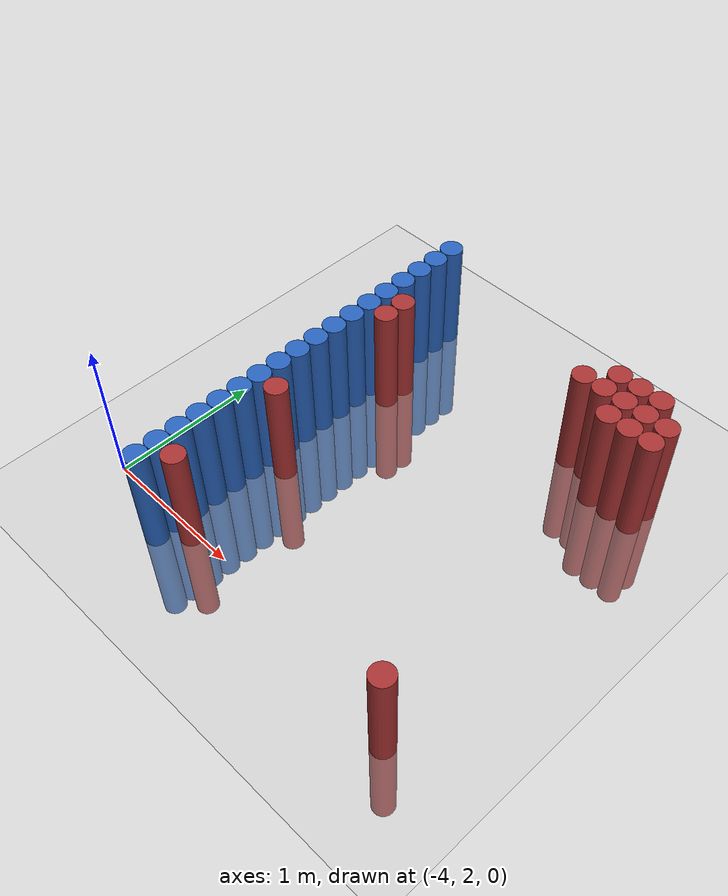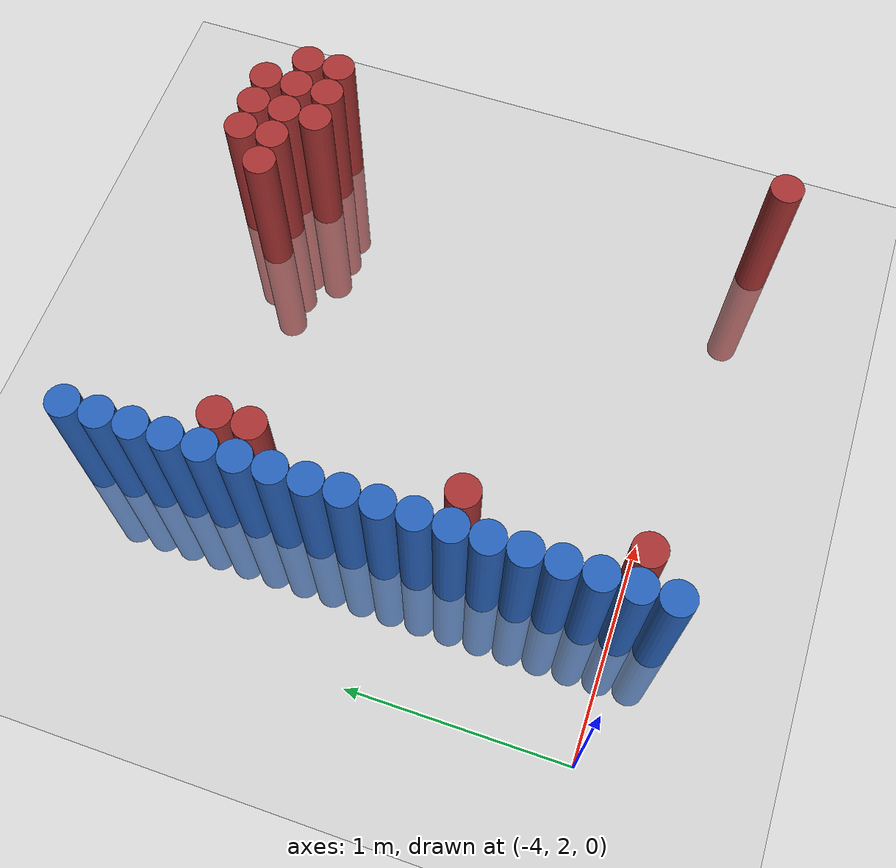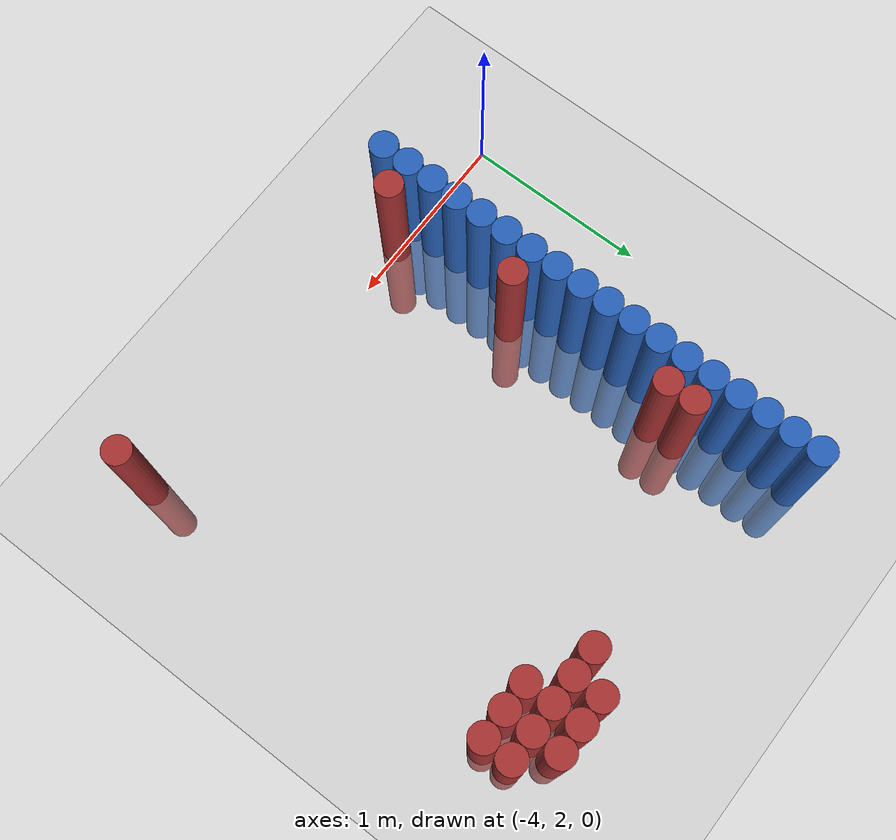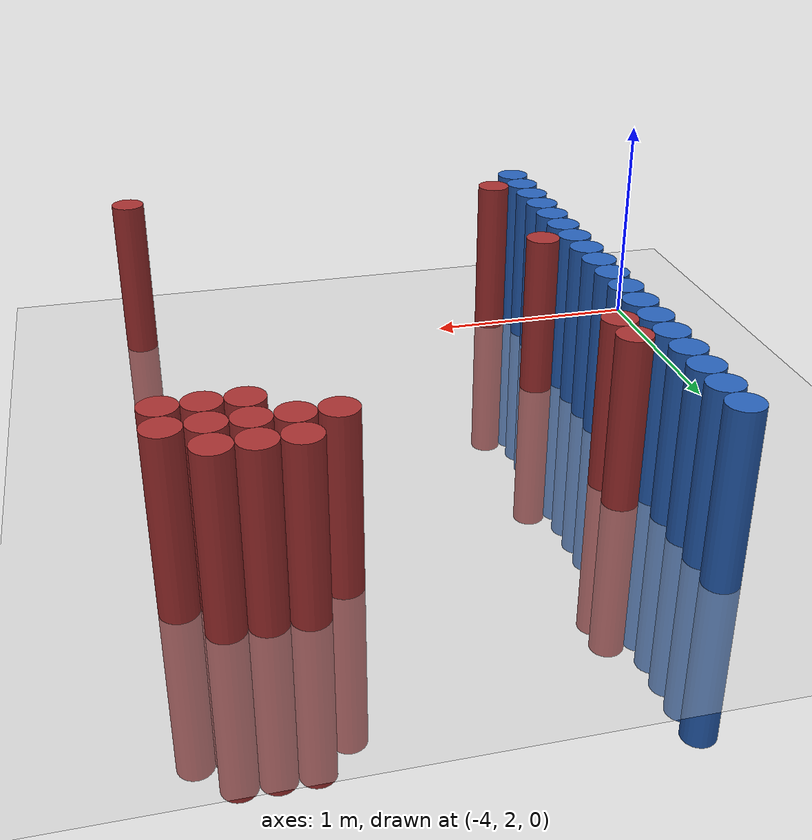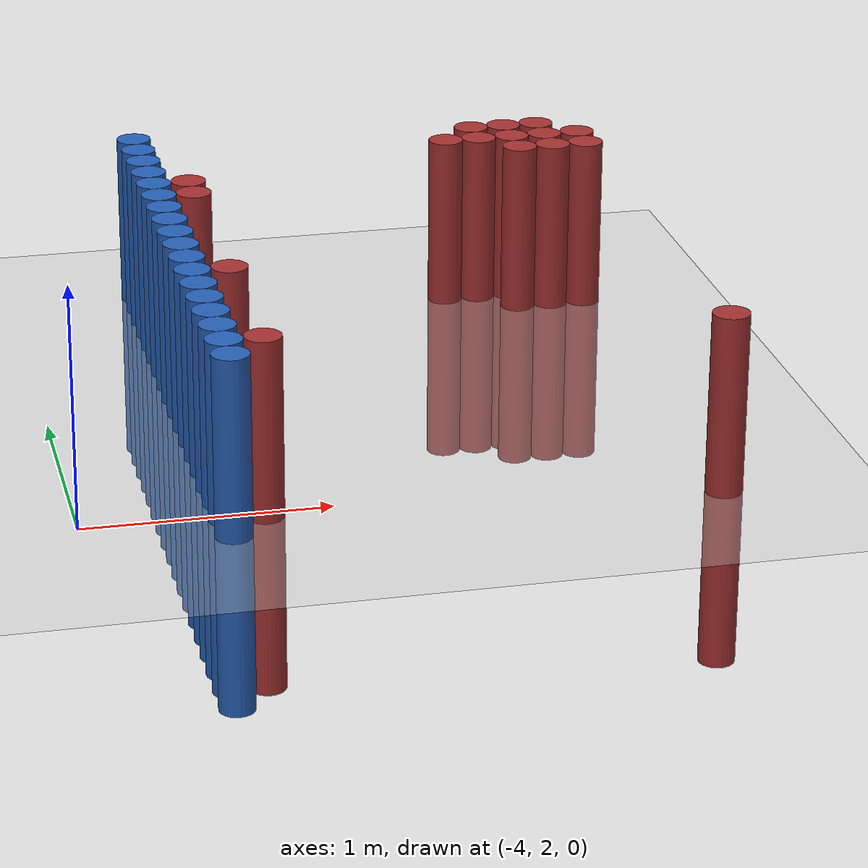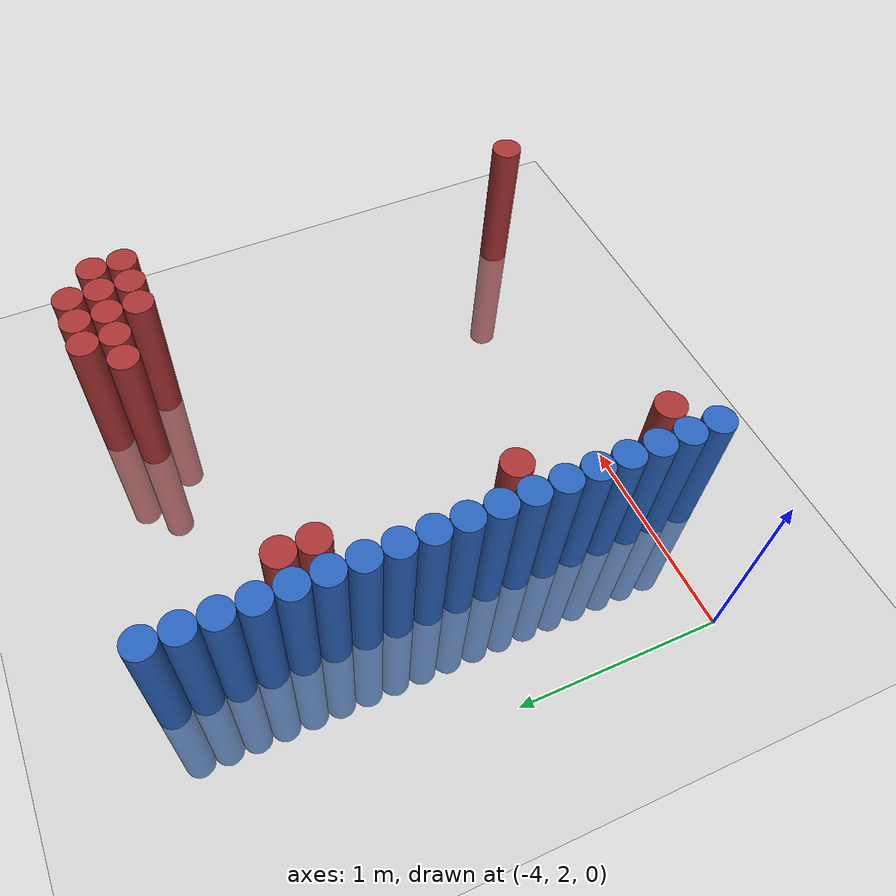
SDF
<sdf version="1.6">
 <world name="default">
  <model name="ground_plane">
   <static>1</static>
   <link name="link">
    <collision name="collision">
     <geometry><plane><normal>0 0 1</normal><size>100 100</size></plane></geometry>
     <surface><friction><ode><mu>100</mu><mu2>50</mu2></ode></friction></surface>
    </collision>
    <visual name="visual">
     <cast_shadows>0</cast_shadows>
     <geometry><plane><normal>0 0 1</normal><size>100 100</size></plane></geometry>
     <material>
      <script><uri>file://media/materials/scripts/gazebo.material</uri><name>Gazebo/Grey</name></script>
     </material>
    </visual>
   </link>
  </model>
  <model name="unit_cylinder_139">
   <static>1</static>
   <pose>-3.425000 1.825000 0.000000 0.000000 0.000000 0.000000</pose>
   <link name="link">
    <inertial>
     <mass>1</mass>
     <inertia><ixx>0.145833</ixx><ixy>0</ixy><ixz>0</ixz><iyy>0.145833</iyy><iyz>0</iyz><izz>0.125</izz></inertia>
    </inertial>
    <collision name="collision">
     <geometry><cylinder><radius>0.075000</radius><length>1.5</length></cylinder></geometry>
    </collision>
    <visual name="visual">
     <geometry><cylinder><radius>0.075000</radius><length>1.5</length></cylinder></geometry>
     <material>
      <ambient>0.152000 0.379000 0.720000 1</ambient>
      <diffuse>0.152000 0.379000 0.720000 1</diffuse>
     </material>
     <material>
      <script><name>Gazebo/Grey</name><uri>file://media/materials/scripts/gazebo.material</uri></script>
     </material>
    </visual>
   </link>
  </model>
  <model name="unit_cylinder_141">
   <static>1</static>
   <pose>-3.425000 1.975000 0.000000 0.000000 0.000000 0.000000</pose>
   <link name="link">
    <inertial>
     <mass>1</mass>
     <inertia><ixx>0.145833</ixx><ixy>0</ixy><ixz>0</ixz><iyy>0.145833</iyy><iyz>0</iyz><izz>0.125</izz></inertia>
    </inertial>
    <collision name="collision">
     <geometry><cylinder><radius>0.075000</radius><length>1.5</length></cylinder></geometry>
    </collision>
    <visual name="visual">
     <geometry><cylinder><radius>0.075000</radius><length>1.5</length></cylinder></geometry>
     <material>
      <ambient>0.152000 0.379000 0.720000 1</ambient>
      <diffuse>0.152000 0.379000 0.720000 1</diffuse>
     </material>
     <material>
      <script><name>Gazebo/Grey</name><uri>file://media/materials/scripts/gazebo.material</uri></script>
     </material>
    </visual>
   </link>
  </model>
  <model name="unit_cylinder_143">
   <static>1</static>
   <pose>-3.425000 2.125000 0.000000 0.000000 0.000000 0.000000</pose>
   <link name="link">
    <inertial>
     <mass>1</mass>
     <inertia><ixx>0.145833</ixx><ixy>0</ixy><ixz>0</ixz><iyy>0.145833</iyy><iyz>0</iyz><izz>0.125</izz></inertia>
    </inertial>
    <collision name="collision">
     <geometry><cylinder><radius>0.075000</radius><length>1.5</length></cylinder></geometry>
    </collision>
    <visual name="visual">
     <geometry><cylinder><radius>0.075000</radius><length>1.5</length></cylinder></geometry>
     <material>
      <ambient>0.152000 0.379000 0.720000 1</ambient>
      <diffuse>0.152000 0.379000 0.720000 1</diffuse>
     </material>
     <material>
      <script><name>Gazebo/Grey</name><uri>file://media/materials/scripts/gazebo.material</uri></script>
     </material>
    </visual>
   </link>
  </model>
  <model name="unit_cylinder_145">
   <static>1</static>
   <pose>-3.425000 2.275000 0.000000 0.000000 0.000000 0.000000</pose>
   <link name="link">
    <inertial>
     <mass>1</mass>
     <inertia><ixx>0.145833</ixx><ixy>0</ixy><ixz>0</ixz><iyy>0.145833</iyy><iyz>0</iyz><izz>0.125</izz></inertia>
    </inertial>
    <collision name="collision">
     <geometry><cylinder><radius>0.075000</radius><length>1.5</length></cylinder></geometry>
    </collision>
    <visual name="visual">
     <geometry><cylinder><radius>0.075000</radius><length>1.5</length></cylinder></geometry>
     <material>
      <ambient>0.152000 0.379000 0.720000 1</ambient>
      <diffuse>0.152000 0.379000 0.720000 1</diffuse>
     </material>
     <material>
      <script><name>Gazebo/Grey</name><uri>file://media/materials/scripts/gazebo.material</uri></script>
     </material>
    </visual>
   </link>
  </model>
  <model name="unit_cylinder_147">
   <static>1</static>
   <pose>-3.425000 2.425000 0.000000 0.000000 0.000000 0.000000</pose>
   <link name="link">
    <inertial>
     <mass>1</mass>
     <inertia><ixx>0.145833</ixx><ixy>0</ixy><ixz>0</ixz><iyy>0.145833</iyy><iyz>0</iyz><izz>0.125</izz></inertia>
    </inertial>
    <collision name="collision">
     <geometry><cylinder><radius>0.075000</radius><length>1.5</length></cylinder></geometry>
    </collision>
    <visual name="visual">
     <geometry><cylinder><radius>0.075000</radius><length>1.5</length></cylinder></geometry>
     <material>
      <ambient>0.152000 0.379000 0.720000 1</ambient>
      <diffuse>0.152000 0.379000 0.720000 1</diffuse>
     </material>
     <material>
      <script><name>Gazebo/Grey</name><uri>file://media/materials/scripts/gazebo.material</uri></script>
     </material>
    </visual>
   </link>
  </model>
  <model name="unit_cylinder_149">
   <static>1</static>
   <pose>-3.425000 2.575000 0.000000 0.000000 0.000000 0.000000</pose>
   <link name="link">
    <inertial>
     <mass>1</mass>
     <inertia><ixx>0.145833</ixx><ixy>0</ixy><ixz>0</ixz><iyy>0.145833</iyy><iyz>0</iyz><izz>0.125</izz></inertia>
    </inertial>
    <collision name="collision">
     <geometry><cylinder><radius>0.075000</radius><length>1.5</length></cylinder></geometry>
    </collision>
    <visual name="visual">
     <geometry><cylinder><radius>0.075000</radius><length>1.5</length></cylinder></geometry>
     <material>
      <ambient>0.152000 0.379000 0.720000 1</ambient>
      <diffuse>0.152000 0.379000 0.720000 1</diffuse>
     </material>
     <material>
      <script><name>Gazebo/Grey</name><uri>file://media/materials/scripts/gazebo.material</uri></script>
     </material>
    </visual>
   </link>
  </model>
  <model name="unit_cylinder_151">
   <static>1</static>
   <pose>-3.425000 2.725000 0.000000 0.000000 0.000000 0.000000</pose>
   <link name="link">
    <inertial>
     <mass>1</mass>
     <inertia><ixx>0.145833</ixx><ixy>0</ixy><ixz>0</ixz><iyy>0.145833</iyy><iyz>0</iyz><izz>0.125</izz></inertia>
    </inertial>
    <collision name="collision">
     <geometry><cylinder><radius>0.075000</radius><length>1.5</length></cylinder></geometry>
    </collision>
    <visual name="visual">
     <geometry><cylinder><radius>0.075000</radius><length>1.5</length></cylinder></geometry>
     <material>
      <ambient>0.152000 0.379000 0.720000 1</ambient>
      <diffuse>0.152000 0.379000 0.720000 1</diffuse>
     </material>
     <material>
      <script><name>Gazebo/Grey</name><uri>file://media/materials/scripts/gazebo.material</uri></script>
     </material>
    </visual>
   </link>
  </model>
  <model name="unit_cylinder_153">
   <static>1</static>
   <pose>-3.425000 2.875000 0.000000 0.000000 0.000000 0.000000</pose>
   <link name="link">
    <inertial>
     <mass>1</mass>
     <inertia><ixx>0.145833</ixx><ixy>0</ixy><ixz>0</ixz><iyy>0.145833</iyy><iyz>0</iyz><izz>0.125</izz></inertia>
    </inertial>
    <collision name="collision">
     <geometry><cylinder><radius>0.075000</radius><length>1.5</length></cylinder></geometry>
    </collision>
    <visual name="visual">
     <geometry><cylinder><radius>0.075000</radius><length>1.5</length></cylinder></geometry>
     <material>
      <ambient>0.152000 0.379000 0.720000 1</ambient>
      <diffuse>0.152000 0.379000 0.720000 1</diffuse>
     </material>
     <material>
      <script><name>Gazebo/Grey</name><uri>file://media/materials/scripts/gazebo.material</uri></script>
     </material>
    </visual>
   </link>
  </model>
  <model name="unit_cylinder_155">
   <static>1</static>
   <pose>-3.425000 3.025000 0.000000 0.000000 0.000000 0.000000</pose>
   <link name="link">
    <inertial>
     <mass>1</mass>
     <inertia><ixx>0.145833</ixx><ixy>0</ixy><ixz>0</ixz><iyy>0.145833</iyy><iyz>0</iyz><izz>0.125</izz></inertia>
    </inertial>
    <collision name="collision">
     <geometry><cylinder><radius>0.075000</radius><length>1.5</length></cylinder></geometry>
    </collision>
    <visual name="visual">
     <geometry><cylinder><radius>0.075000</radius><length>1.5</length></cylinder></geometry>
     <material>
      <ambient>0.152000 0.379000 0.720000 1</ambient>
      <diffuse>0.152000 0.379000 0.720000 1</diffuse>
     </material>
     <material>
      <script><name>Gazebo/Grey</name><uri>file://media/materials/scripts/gazebo.material</uri></script>
     </material>
    </visual>
   </link>
  </model>
  <model name="unit_cylinder_157">
   <static>1</static>
   <pose>-3.425000 3.175000 0.000000 0.000000 0.000000 0.000000</pose>
   <link name="link">
    <inertial>
     <mass>1</mass>
     <inertia><ixx>0.145833</ixx><ixy>0</ixy><ixz>0</ixz><iyy>0.145833</iyy><iyz>0</iyz><izz>0.125</izz></inertia>
    </inertial>
    <collision name="collision">
     <geometry><cylinder><radius>0.075000</radius><length>1.5</length></cylinder></geometry>
    </collision>
    <visual name="visual">
     <geometry><cylinder><radius>0.075000</radius><length>1.5</length></cylinder></geometry>
     <material>
      <ambient>0.152000 0.379000 0.720000 1</ambient>
      <diffuse>0.152000 0.379000 0.720000 1</diffuse>
     </material>
     <material>
      <script><name>Gazebo/Grey</name><uri>file://media/materials/scripts/gazebo.material</uri></script>
     </material>
    </visual>
   </link>
  </model>
  <model name="unit_cylinder_159">
   <static>1</static>
   <pose>-3.425000 3.325000 0.000000 0.000000 0.000000 0.000000</pose>
   <link name="link">
    <inertial>
     <mass>1</mass>
     <inertia><ixx>0.145833</ixx><ixy>0</ixy><ixz>0</ixz><iyy>0.145833</iyy><iyz>0</iyz><izz>0.125</izz></inertia>
    </inertial>
    <collision name="collision">
     <geometry><cylinder><radius>0.075000</radius><length>1.5</length></cylinder></geometry>
    </collision>
    <visual name="visual">
     <geometry><cylinder><radius>0.075000</radius><length>1.5</length></cylinder></geometry>
     <material>
      <ambient>0.152000 0.379000 0.720000 1</ambient>
      <diffuse>0.152000 0.379000 0.720000 1</diffuse>
     </material>
     <material>
      <script><name>Gazebo/Grey</name><uri>file://media/materials/scripts/gazebo.material</uri></script>
     </material>
    </visual>
   </link>
  </model>
  <model name="unit_cylinder_161">
   <static>1</static>
   <pose>-3.425000 3.475000 0.000000 0.000000 0.000000 0.000000</pose>
   <link name="link">
    <inertial>
     <mass>1</mass>
     <inertia><ixx>0.145833</ixx><ixy>0</ixy><ixz>0</ixz><iyy>0.145833</iyy><iyz>0</iyz><izz>0.125</izz></inertia>
    </inertial>
    <collision name="collision">
     <geometry><cylinder><radius>0.075000</radius><length>1.5</length></cylinder></geometry>
    </collision>
    <visual name="visual">
     <geometry><cylinder><radius>0.075000</radius><length>1.5</length></cylinder></geometry>
     <material>
      <ambient>0.152000 0.379000 0.720000 1</ambient>
      <diffuse>0.152000 0.379000 0.720000 1</diffuse>
     </material>
     <material>
      <script><name>Gazebo/Grey</name><uri>file://media/materials/scripts/gazebo.material</uri></script>
     </material>
    </visual>
   </link>
  </model>
  <model name="unit_cylinder_163">
   <static>1</static>
   <pose>-3.425000 3.625000 0.000000 0.000000 0.000000 0.000000</pose>
   <link name="link">
    <inertial>
     <mass>1</mass>
     <inertia><ixx>0.145833</ixx><ixy>0</ixy><ixz>0</ixz><iyy>0.145833</iyy><iyz>0</iyz><izz>0.125</izz></inertia>
    </inertial>
    <collision name="collision">
     <geometry><cylinder><radius>0.075000</radius><length>1.5</length></cylinder></geometry>
    </collision>
    <visual name="visual">
     <geometry><cylinder><radius>0.075000</radius><length>1.5</length></cylinder></geometry>
     <material>
      <ambient>0.152000 0.379000 0.720000 1</ambient>
      <diffuse>0.152000 0.379000 0.720000 1</diffuse>
     </material>
     <material>
      <script><name>Gazebo/Grey</name><uri>file://media/materials/scripts/gazebo.material</uri></script>
     </material>
    </visual>
   </link>
  </model>
  <model name="unit_cylinder_165">
   <static>1</static>
   <pose>-3.425000 3.775000 0.000000 0.000000 0.000000 0.000000</pose>
   <link name="link">
    <inertial>
     <mass>1</mass>
     <inertia><ixx>0.145833</ixx><ixy>0</ixy><ixz>0</ixz><iyy>0.145833</iyy><iyz>0</iyz><izz>0.125</izz></inertia>
    </inertial>
    <collision name="collision">
     <geometry><cylinder><radius>0.075000</radius><length>1.5</length></cylinder></geometry>
    </collision>
    <visual name="visual">
     <geometry><cylinder><radius>0.075000</radius><length>1.5</length></cylinder></geometry>
     <material>
      <ambient>0.152000 0.379000 0.720000 1</ambient>
      <diffuse>0.152000 0.379000 0.720000 1</diffuse>
     </material>
     <material>
      <script><name>Gazebo/Grey</name><uri>file://media/materials/scripts/gazebo.material</uri></script>
     </material>
    </visual>
   </link>
  </model>
  <model name="unit_cylinder_167">
   <static>1</static>
   <pose>-3.425000 3.925000 0.000000 0.000000 0.000000 0.000000</pose>
   <link name="link">
    <inertial>
     <mass>1</mass>
     <inertia><ixx>0.145833</ixx><ixy>0</ixy><ixz>0</ixz><iyy>0.145833</iyy><iyz>0</iyz><izz>0.125</izz></inertia>
    </inertial>
    <collision name="collision">
     <geometry><cylinder><radius>0.075000</radius><length>1.5</length></cylinder></geometry>
    </collision>
    <visual name="visual">
     <geometry><cylinder><radius>0.075000</radius><length>1.5</length></cylinder></geometry>
     <material>
      <ambient>0.152000 0.379000 0.720000 1</ambient>
      <diffuse>0.152000 0.379000 0.720000 1</diffuse>
     </material>
     <material>
      <script><name>Gazebo/Grey</name><uri>file://media/materials/scripts/gazebo.material</uri></script>
     </material>
    </visual>
   </link>
  </model>
  <model name="unit_cylinder_169">
   <static>1</static>
   <pose>-3.425000 4.075000 0.000000 0.000000 0.000000 0.000000</pose>
   <link name="link">
    <inertial>
     <mass>1</mass>
     <inertia><ixx>0.145833</ixx><ixy>0</ixy><ixz>0</ixz><iyy>0.145833</iyy><iyz>0</iyz><izz>0.125</izz></inertia>
    </inertial>
    <collision name="collision">
     <geometry><cylinder><radius>0.075000</radius><length>1.5</length></cylinder></geometry>
    </collision>
    <visual name="visual">
     <geometry><cylinder><radius>0.075000</radius><length>1.5</length></cylinder></geometry>
     <material>
      <ambient>0.152000 0.379000 0.720000 1</ambient>
      <diffuse>0.152000 0.379000 0.720000 1</diffuse>
     </material>
     <material>
      <script><name>Gazebo/Grey</name><uri>file://media/materials/scripts/gazebo.material</uri></script>
     </material>
    </visual>
   </link>
  </model>
  <model name="unit_cylinder_171">
   <static>1</static>
   <pose>-3.425000 4.225000 0.000000 0.000000 0.000000 0.000000</pose>
   <link name="link">
    <inertial>
     <mass>1</mass>
     <inertia><ixx>0.145833</ixx><ixy>0</ixy><ixz>0</ixz><iyy>0.145833</iyy><iyz>0</iyz><izz>0.125</izz></inertia>
    </inertial>
    <collision name="collision">
     <geometry><cylinder><radius>0.075000</radius><length>1.5</length></cylinder></geometry>
    </collision>
    <visual name="visual">
     <geometry><cylinder><radius>0.075000</radius><length>1.5</length></cylinder></geometry>
     <material>
      <ambient>0.152000 0.379000 0.720000 1</ambient>
      <diffuse>0.152000 0.379000 0.720000 1</diffuse>
     </material>
     <material>
      <script><name>Gazebo/Grey</name><uri>file://media/materials/scripts/gazebo.material</uri></script>
     </material>
    </visual>
   </link>
  </model>
  <model name="unit_cylinder_173">
   <static>1</static>
   <pose>-3.425000 4.375000 0.000000 0.000000 0.000000 0.000000</pose>
   <link name="link">
    <inertial>
     <mass>1</mass>
     <inertia><ixx>0.145833</ixx><ixy>0</ixy><ixz>0</ixz><iyy>0.145833</iyy><iyz>0</iyz><izz>0.125</izz></inertia>
    </inertial>
    <collision name="collision">
     <geometry><cylinder><radius>0.075000</radius><length>1.5</length></cylinder></geometry>
    </collision>
    <visual name="visual">
     <geometry><cylinder><radius>0.075000</radius><length>1.5</length></cylinder></geometry>
     <material>
      <ambient>0.152000 0.379000 0.720000 1</ambient>
      <diffuse>0.152000 0.379000 0.720000 1</diffuse>
     </material>
     <material>
      <script><name>Gazebo/Grey</name><uri>file://media/materials/scripts/gazebo.material</uri></script>
     </material>
    </visual>
   </link>
  </model>
  <model name="unit_cylinder_233">
   <static>1</static>
   <pose>-3.425000 1.825000 0.000000 0.000000 0.000000 0.000000</pose>
   <link name="link">
    <inertial>
     <mass>1</mass>
     <inertia><ixx>0.145833</ixx><ixy>0</ixy><ixz>0</ixz><iyy>0.145833</iyy><iyz>0</iyz><izz>0.125</izz></inertia>
    </inertial>
    <collision name="collision">
     <geometry><cylinder><radius>0.075000</radius><length>1.5</length></cylinder></geometry>
    </collision>
    <visual name="visual">
     <geometry><cylinder><radius>0.075000</radius><length>1.5</length></cylinder></geometry>
     <material>
      <ambient>0.152000 0.379000 0.720000 1</ambient>
      <diffuse>0.152000 0.379000 0.720000 1</diffuse>
     </material>
     <material>
      <script><name>Gazebo/Grey</name><uri>file://media/materials/scripts/gazebo.material</uri></script>
     </material>
    </visual>
   </link>
  </model>
  <model name="unit_cylinder_234">
   <static>1</static>
   <pose>-3.425000 1.975000 0.000000 0.000000 0.000000 0.000000</pose>
   <link name="link">
    <inertial>
     <mass>1</mass>
     <inertia><ixx>0.145833</ixx><ixy>0</ixy><ixz>0</ixz><iyy>0.145833</iyy><iyz>0</iyz><izz>0.125</izz></inertia>
    </inertial>
    <collision name="collision">
     <geometry><cylinder><radius>0.075000</radius><length>1.5</length></cylinder></geometry>
    </collision>
    <visual name="visual">
     <geometry><cylinder><radius>0.075000</radius><length>1.5</length></cylinder></geometry>
     <material>
      <ambient>0.152000 0.379000 0.720000 1</ambient>
      <diffuse>0.152000 0.379000 0.720000 1</diffuse>
     </material>
     <material>
      <script><name>Gazebo/Grey</name><uri>file://media/materials/scripts/gazebo.material</uri></script>
     </material>
    </visual>
   </link>
  </model>
  <model name="unit_cylinder_235">
   <static>1</static>
   <pose>-3.425000 2.125000 0.000000 0.000000 0.000000 0.000000</pose>
   <link name="link">
    <inertial>
     <mass>1</mass>
     <inertia><ixx>0.145833</ixx><ixy>0</ixy><ixz>0</ixz><iyy>0.145833</iyy><iyz>0</iyz><izz>0.125</izz></inertia>
    </inertial>
    <collision name="collision">
     <geometry><cylinder><radius>0.075000</radius><length>1.5</length></cylinder></geometry>
    </collision>
    <visual name="visual">
     <geometry><cylinder><radius>0.075000</radius><length>1.5</length></cylinder></geometry>
     <material>
      <ambient>0.152000 0.379000 0.720000 1</ambient>
      <diffuse>0.152000 0.379000 0.720000 1</diffuse>
     </material>
     <material>
      <script><name>Gazebo/Grey</name><uri>file://media/materials/scripts/gazebo.material</uri></script>
     </material>
    </visual>
   </link>
  </model>
  <model name="unit_cylinder_236">
   <static>1</static>
   <pose>-3.425000 2.275000 0.000000 0.000000 0.000000 0.000000</pose>
   <link name="link">
    <inertial>
     <mass>1</mass>
     <inertia><ixx>0.145833</ixx><ixy>0</ixy><ixz>0</ixz><iyy>0.145833</iyy><iyz>0</iyz><izz>0.125</izz></inertia>
    </inertial>
    <collision name="collision">
     <geometry><cylinder><radius>0.075000</radius><length>1.5</length></cylinder></geometry>
    </collision>
    <visual name="visual">
     <geometry><cylinder><radius>0.075000</radius><length>1.5</length></cylinder></geometry>
     <material>
      <ambient>0.152000 0.379000 0.720000 1</ambient>
      <diffuse>0.152000 0.379000 0.720000 1</diffuse>
     </material>
     <material>
      <script><name>Gazebo/Grey</name><uri>file://media/materials/scripts/gazebo.material</uri></script>
     </material>
    </visual>
   </link>
  </model>
  <model name="unit_cylinder_237">
   <static>1</static>
   <pose>-3.425000 2.425000 0.000000 0.000000 0.000000 0.000000</pose>
   <link name="link">
    <inertial>
     <mass>1</mass>
     <inertia><ixx>0.145833</ixx><ixy>0</ixy><ixz>0</ixz><iyy>0.145833</iyy><iyz>0</iyz><izz>0.125</izz></inertia>
    </inertial>
    <collision name="collision">
     <geometry><cylinder><radius>0.075000</radius><length>1.5</length></cylinder></geometry>
    </collision>
    <visual name="visual">
     <geometry><cylinder><radius>0.075000</radius><length>1.5</length></cylinder></geometry>
     <material>
      <ambient>0.152000 0.379000 0.720000 1</ambient>
      <diffuse>0.152000 0.379000 0.720000 1</diffuse>
     </material>
     <material>
      <script><name>Gazebo/Grey</name><uri>file://media/materials/scripts/gazebo.material</uri></script>
     </material>
    </visual>
   </link>
  </model>
  <model name="unit_cylinder_238">
   <static>1</static>
   <pose>-3.425000 2.575000 0.000000 0.000000 0.000000 0.000000</pose>
   <link name="link">
    <inertial>
     <mass>1</mass>
     <inertia><ixx>0.145833</ixx><ixy>0</ixy><ixz>0</ixz><iyy>0.145833</iyy><iyz>0</iyz><izz>0.125</izz></inertia>
    </inertial>
    <collision name="collision">
     <geometry><cylinder><radius>0.075000</radius><length>1.5</length></cylinder></geometry>
    </collision>
    <visual name="visual">
     <geometry><cylinder><radius>0.075000</radius><length>1.5</length></cylinder></geometry>
     <material>
      <ambient>0.152000 0.379000 0.720000 1</ambient>
      <diffuse>0.152000 0.379000 0.720000 1</diffuse>
     </material>
     <material>
      <script><name>Gazebo/Grey</name><uri>file://media/materials/scripts/gazebo.material</uri></script>
     </material>
    </visual>
   </link>
  </model>
  <model name="unit_cylinder_239">
   <static>1</static>
   <pose>-3.425000 2.725000 0.000000 0.000000 0.000000 0.000000</pose>
   <link name="link">
    <inertial>
     <mass>1</mass>
     <inertia><ixx>0.145833</ixx><ixy>0</ixy><ixz>0</ixz><iyy>0.145833</iyy><iyz>0</iyz><izz>0.125</izz></inertia>
    </inertial>
    <collision name="collision">
     <geometry><cylinder><radius>0.075000</radius><length>1.5</length></cylinder></geometry>
    </collision>
    <visual name="visual">
     <geometry><cylinder><radius>0.075000</radius><length>1.5</length></cylinder></geometry>
     <material>
      <ambient>0.152000 0.379000 0.720000 1</ambient>
      <diffuse>0.152000 0.379000 0.720000 1</diffuse>
     </material>
     <material>
      <script><name>Gazebo/Grey</name><uri>file://media/materials/scripts/gazebo.material</uri></script>
     </material>
    </visual>
   </link>
  </model>
  <model name="unit_cylinder_240">
   <static>1</static>
   <pose>-3.425000 2.875000 0.000000 0.000000 0.000000 0.000000</pose>
   <link name="link">
    <inertial>
     <mass>1</mass>
     <inertia><ixx>0.145833</ixx><ixy>0</ixy><ixz>0</ixz><iyy>0.145833</iyy><iyz>0</iyz><izz>0.125</izz></inertia>
    </inertial>
    <collision name="collision">
     <geometry><cylinder><radius>0.075000</radius><length>1.5</length></cylinder></geometry>
    </collision>
    <visual name="visual">
     <geometry><cylinder><radius>0.075000</radius><length>1.5</length></cylinder></geometry>
     <material>
      <ambient>0.152000 0.379000 0.720000 1</ambient>
      <diffuse>0.152000 0.379000 0.720000 1</diffuse>
     </material>
     <material>
      <script><name>Gazebo/Grey</name><uri>file://media/materials/scripts/gazebo.material</uri></script>
     </material>
    </visual>
   </link>
  </model>
  <model name="unit_cylinder_241">
   <static>1</static>
   <pose>-3.425000 3.025000 0.000000 0.000000 0.000000 0.000000</pose>
   <link name="link">
    <inertial>
     <mass>1</mass>
     <inertia><ixx>0.145833</ixx><ixy>0</ixy><ixz>0</ixz><iyy>0.145833</iyy><iyz>0</iyz><izz>0.125</izz></inertia>
    </inertial>
    <collision name="collision">
     <geometry><cylinder><radius>0.075000</radius><length>1.5</length></cylinder></geometry>
    </collision>
    <visual name="visual">
     <geometry><cylinder><radius>0.075000</radius><length>1.5</length></cylinder></geometry>
     <material>
      <ambient>0.152000 0.379000 0.720000 1</ambient>
      <diffuse>0.152000 0.379000 0.720000 1</diffuse>
     </material>
     <material>
      <script><name>Gazebo/Grey</name><uri>file://media/materials/scripts/gazebo.material</uri></script>
     </material>
    </visual>
   </link>
  </model>
  <model name="unit_cylinder_242">
   <static>1</static>
   <pose>-3.425000 3.175000 0.000000 0.000000 0.000000 0.000000</pose>
   <link name="link">
    <inertial>
     <mass>1</mass>
     <inertia><ixx>0.145833</ixx><ixy>0</ixy><ixz>0</ixz><iyy>0.145833</iyy><iyz>0</iyz><izz>0.125</izz></inertia>
    </inertial>
    <collision name="collision">
     <geometry><cylinder><radius>0.075000</radius><length>1.5</length></cylinder></geometry>
    </collision>
    <visual name="visual">
     <geometry><cylinder><radius>0.075000</radius><length>1.5</length></cylinder></geometry>
     <material>
      <ambient>0.152000 0.379000 0.720000 1</ambient>
      <diffuse>0.152000 0.379000 0.720000 1</diffuse>
     </material>
     <material>
      <script><name>Gazebo/Grey</name><uri>file://media/materials/scripts/gazebo.material</uri></script>
     </material>
    </visual>
   </link>
  </model>
  <model name="unit_cylinder_243">
   <static>1</static>
   <pose>-3.425000 3.325000 0.000000 0.000000 0.000000 0.000000</pose>
   <link name="link">
    <inertial>
     <mass>1</mass>
     <inertia><ixx>0.145833</ixx><ixy>0</ixy><ixz>0</ixz><iyy>0.145833</iyy><iyz>0</iyz><izz>0.125</izz></inertia>
    </inertial>
    <collision name="collision">
     <geometry><cylinder><radius>0.075000</radius><length>1.5</length></cylinder></geometry>
    </collision>
    <visual name="visual">
     <geometry><cylinder><radius>0.075000</radius><length>1.5</length></cylinder></geometry>
     <material>
      <ambient>0.152000 0.379000 0.720000 1</ambient>
      <diffuse>0.152000 0.379000 0.720000 1</diffuse>
     </material>
     <material>
      <script><name>Gazebo/Grey</name><uri>file://media/materials/scripts/gazebo.material</uri></script>
     </material>
    </visual>
   </link>
  </model>
  <model name="unit_cylinder_244">
   <static>1</static>
   <pose>-3.425000 3.475000 0.000000 0.000000 0.000000 0.000000</pose>
   <link name="link">
    <inertial>
     <mass>1</mass>
     <inertia><ixx>0.145833</ixx><ixy>0</ixy><ixz>0</ixz><iyy>0.145833</iyy><iyz>0</iyz><izz>0.125</izz></inertia>
    </inertial>
    <collision name="collision">
     <geometry><cylinder><radius>0.075000</radius><length>1.5</length></cylinder></geometry>
    </collision>
    <visual name="visual">
     <geometry><cylinder><radius>0.075000</radius><length>1.5</length></cylinder></geometry>
     <material>
      <ambient>0.152000 0.379000 0.720000 1</ambient>
      <diffuse>0.152000 0.379000 0.720000 1</diffuse>
     </material>
     <material>
      <script><name>Gazebo/Grey</name><uri>file://media/materials/scripts/gazebo.material</uri></script>
     </material>
    </visual>
   </link>
  </model>
  <model name="unit_cylinder_245">
   <static>1</static>
   <pose>-3.425000 3.625000 0.000000 0.000000 0.000000 0.000000</pose>
   <link name="link">
    <inertial>
     <mass>1</mass>
     <inertia><ixx>0.145833</ixx><ixy>0</ixy><ixz>0</ixz><iyy>0.145833</iyy><iyz>0</iyz><izz>0.125</izz></inertia>
    </inertial>
    <collision name="collision">
     <geometry><cylinder><radius>0.075000</radius><length>1.5</length></cylinder></geometry>
    </collision>
    <visual name="visual">
     <geometry><cylinder><radius>0.075000</radius><length>1.5</length></cylinder></geometry>
     <material>
      <ambient>0.152000 0.379000 0.720000 1</ambient>
      <diffuse>0.152000 0.379000 0.720000 1</diffuse>
     </material>
     <material>
      <script><name>Gazebo/Grey</name><uri>file://media/materials/scripts/gazebo.material</uri></script>
     </material>
    </visual>
   </link>
  </model>
  <model name="unit_cylinder_246">
   <static>1</static>
   <pose>-3.425000 3.775000 0.000000 0.000000 0.000000 0.000000</pose>
   <link name="link">
    <inertial>
     <mass>1</mass>
     <inertia><ixx>0.145833</ixx><ixy>0</ixy><ixz>0</ixz><iyy>0.145833</iyy><iyz>0</iyz><izz>0.125</izz></inertia>
    </inertial>
    <collision name="collision">
     <geometry><cylinder><radius>0.075000</radius><length>1.5</length></cylinder></geometry>
    </collision>
    <visual name="visual">
     <geometry><cylinder><radius>0.075000</radius><length>1.5</length></cylinder></geometry>
     <material>
      <ambient>0.152000 0.379000 0.720000 1</ambient>
      <diffuse>0.152000 0.379000 0.720000 1</diffuse>
     </material>
     <material>
      <script><name>Gazebo/Grey</name><uri>file://media/materials/scripts/gazebo.material</uri></script>
     </material>
    </visual>
   </link>
  </model>
  <model name="unit_cylinder_247">
   <static>1</static>
   <pose>-3.425000 3.925000 0.000000 0.000000 0.000000 0.000000</pose>
   <link name="link">
    <inertial>
     <mass>1</mass>
     <inertia><ixx>0.145833</ixx><ixy>0</ixy><ixz>0</ixz><iyy>0.145833</iyy><iyz>0</iyz><izz>0.125</izz></inertia>
    </inertial>
    <collision name="collision">
     <geometry><cylinder><radius>0.075000</radius><length>1.5</length></cylinder></geometry>
    </collision>
    <visual name="visual">
     <geometry><cylinder><radius>0.075000</radius><length>1.5</length></cylinder></geometry>
     <material>
      <ambient>0.152000 0.379000 0.720000 1</ambient>
      <diffuse>0.152000 0.379000 0.720000 1</diffuse>
     </material>
     <material>
      <script><name>Gazebo/Grey</name><uri>file://media/materials/scripts/gazebo.material</uri></script>
     </material>
    </visual>
   </link>
  </model>
  <model name="unit_cylinder_248">
   <static>1</static>
   <pose>-3.425000 4.075000 0.000000 0.000000 0.000000 0.000000</pose>
   <link name="link">
    <inertial>
     <mass>1</mass>
     <inertia><ixx>0.145833</ixx><ixy>0</ixy><ixz>0</ixz><iyy>0.145833</iyy><iyz>0</iyz><izz>0.125</izz></inertia>
    </inertial>
    <collision name="collision">
     <geometry><cylinder><radius>0.075000</radius><length>1.5</length></cylinder></geometry>
    </collision>
    <visual name="visual">
     <geometry><cylinder><radius>0.075000</radius><length>1.5</length></cylinder></geometry>
     <material>
      <ambient>0.152000 0.379000 0.720000 1</ambient>
      <diffuse>0.152000 0.379000 0.720000 1</diffuse>
     </material>
     <material>
      <script><name>Gazebo/Grey</name><uri>file://media/materials/scripts/gazebo.material</uri></script>
     </material>
    </visual>
   </link>
  </model>
  <model name="unit_cylinder_249">
   <static>1</static>
   <pose>-3.425000 4.225000 0.000000 0.000000 0.000000 0.000000</pose>
   <link name="link">
    <inertial>
     <mass>1</mass>
     <inertia><ixx>0.145833</ixx><ixy>0</ixy><ixz>0</ixz><iyy>0.145833</iyy><iyz>0</iyz><izz>0.125</izz></inertia>
    </inertial>
    <collision name="collision">
     <geometry><cylinder><radius>0.075000</radius><length>1.5</length></cylinder></geometry>
    </collision>
    <visual name="visual">
     <geometry><cylinder><radius>0.075000</radius><length>1.5</length></cylinder></geometry>
     <material>
      <ambient>0.152000 0.379000 0.720000 1</ambient>
      <diffuse>0.152000 0.379000 0.720000 1</diffuse>
     </material>
     <material>
      <script><name>Gazebo/Grey</name><uri>file://media/materials/scripts/gazebo.material</uri></script>
     </material>
    </visual>
   </link>
  </model>
  <model name="unit_cylinder_250">
   <static>1</static>
   <pose>-3.425000 4.375000 0.000000 0.000000 0.000000 0.000000</pose>
   <link name="link">
    <inertial>
     <mass>1</mass>
     <inertia><ixx>0.145833</ixx><ixy>0</ixy><ixz>0</ixz><iyy>0.145833</iyy><iyz>0</iyz><izz>0.125</izz></inertia>
    </inertial>
    <collision name="collision">
     <geometry><cylinder><radius>0.075000</radius><length>1.5</length></cylinder></geometry>
    </collision>
    <visual name="visual">
     <geometry><cylinder><radius>0.075000</radius><length>1.5</length></cylinder></geometry>
     <material>
      <ambient>0.152000 0.379000 0.720000 1</ambient>
      <diffuse>0.152000 0.379000 0.720000 1</diffuse>
     </material>
     <material>
      <script><name>Gazebo/Grey</name><uri>file://media/materials/scripts/gazebo.material</uri></script>
     </material>
    </visual>
   </link>
  </model>
  <model name="unit_cylinder_263">
   <static>1</static>
   <pose>-3.275000 1.975000 0.000000 0.000000 0.000000 0.000000</pose>
   <link name="link">
    <inertial>
     <mass>1</mass>
     <inertia><ixx>0.145833</ixx><ixy>0</ixy><ixz>0</ixz><iyy>0.145833</iyy><iyz>0</iyz><izz>0.125</izz></inertia>
    </inertial>
    <collision name="collision">
     <geometry><cylinder><radius>0.075000</radius><length>1.5</length></cylinder></geometry>
    </collision>
    <visual name="visual">
     <geometry><cylinder><radius>0.075000</radius><length>1.5</length></cylinder></geometry>
     <material>
      <ambient>0.648000 0.192000 0.192000 1</ambient>
      <diffuse>0.648000 0.192000 0.192000 1</diffuse>
     </material>
     <material>
      <script><name>Gazebo/Grey</name><uri>file://media/materials/scripts/gazebo.material</uri></script>
     </material>
    </visual>
   </link>
  </model>
  <model name="unit_cylinder_264">
   <static>1</static>
   <pose>-3.275000 2.725000 0.000000 0.000000 0.000000 0.000000</pose>
   <link name="link">
    <inertial>
     <mass>1</mass>
     <inertia><ixx>0.145833</ixx><ixy>0</ixy><ixz>0</ixz><iyy>0.145833</iyy><iyz>0</iyz><izz>0.125</izz></inertia>
    </inertial>
    <collision name="collision">
     <geometry><cylinder><radius>0.075000</radius><length>1.5</length></cylinder></geometry>
    </collision>
    <visual name="visual">
     <geometry><cylinder><radius>0.075000</radius><length>1.5</length></cylinder></geometry>
     <material>
      <ambient>0.648000 0.192000 0.192000 1</ambient>
      <diffuse>0.648000 0.192000 0.192000 1</diffuse>
     </material>
     <material>
      <script><name>Gazebo/Grey</name><uri>file://media/materials/scripts/gazebo.material</uri></script>
     </material>
    </visual>
   </link>
  </model>
  <model name="unit_cylinder_265">
   <static>1</static>
   <pose>-3.275000 3.625000 0.000000 0.000000 0.000000 0.000000</pose>
   <link name="link">
    <inertial>
     <mass>1</mass>
     <inertia><ixx>0.145833</ixx><ixy>0</ixy><ixz>0</ixz><iyy>0.145833</iyy><iyz>0</iyz><izz>0.125</izz></inertia>
    </inertial>
    <collision name="collision">
     <geometry><cylinder><radius>0.075000</radius><length>1.5</length></cylinder></geometry>
    </collision>
    <visual name="visual">
     <geometry><cylinder><radius>0.075000</radius><length>1.5</length></cylinder></geometry>
     <material>
      <ambient>0.648000 0.192000 0.192000 1</ambient>
      <diffuse>0.648000 0.192000 0.192000 1</diffuse>
     </material>
     <material>
      <script><name>Gazebo/Grey</name><uri>file://media/materials/scripts/gazebo.material</uri></script>
     </material>
    </visual>
   </link>
  </model>
  <model name="unit_cylinder_266">
   <static>1</static>
   <pose>-3.275000 3.775000 0.000000 0.000000 0.000000 0.000000</pose>
   <link name="link">
    <inertial>
     <mass>1</mass>
     <inertia><ixx>0.145833</ixx><ixy>0</ixy><ixz>0</ixz><iyy>0.145833</iyy><iyz>0</iyz><izz>0.125</izz></inertia>
    </inertial>
    <collision name="collision">
     <geometry><cylinder><radius>0.075000</radius><length>1.5</length></cylinder></geometry>
    </collision>
    <visual name="visual">
     <geometry><cylinder><radius>0.075000</radius><length>1.5</length></cylinder></geometry>
     <material>
      <ambient>0.648000 0.192000 0.192000 1</ambient>
      <diffuse>0.648000 0.192000 0.192000 1</diffuse>
     </material>
     <material>
      <script><name>Gazebo/Grey</name><uri>file://media/materials/scripts/gazebo.material</uri></script>
     </material>
    </visual>
   </link>
  </model>
  <model name="unit_cylinder_295">
   <static>1</static>
   <pose>-2.075000 4.075000 0.000000 0.000000 0.000000 0.000000</pose>
   <link name="link">
    <inertial>
     <mass>1</mass>
     <inertia><ixx>0.145833</ixx><ixy>0</ixy><ixz>0</ixz><iyy>0.145833</iyy><iyz>0</iyz><izz>0.125</izz></inertia>
    </inertial>
    <collision name="collision">
     <geometry><cylinder><radius>0.075000</radius><length>1.5</length></cylinder></geometry>
    </collision>
    <visual name="visual">
     <geometry><cylinder><radius>0.075000</radius><length>1.5</length></cylinder></geometry>
     <material>
      <ambient>0.648000 0.192000 0.192000 1</ambient>
      <diffuse>0.648000 0.192000 0.192000 1</diffuse>
     </material>
     <material>
      <script><name>Gazebo/Grey</name><uri>file://media/materials/scripts/gazebo.material</uri></script>
     </material>
    </visual>
   </link>
  </model>
  <model name="unit_cylinder_300">
   <static>1</static>
   <pose>-1.925000 4.075000 0.000000 0.000000 0.000000 0.000000</pose>
   <link name="link">
    <inertial>
     <mass>1</mass>
     <inertia><ixx>0.145833</ixx><ixy>0</ixy><ixz>0</ixz><iyy>0.145833</iyy><iyz>0</iyz><izz>0.125</izz></inertia>
    </inertial>
    <collision name="collision">
     <geometry><cylinder><radius>0.075000</radius><length>1.5</length></cylinder></geometry>
    </collision>
    <visual name="visual">
     <geometry><cylinder><radius>0.075000</radius><length>1.5</length></cylinder></geometry>
     <material>
      <ambient>0.648000 0.192000 0.192000 1</ambient>
      <diffuse>0.648000 0.192000 0.192000 1</diffuse>
     </material>
     <material>
      <script><name>Gazebo/Grey</name><uri>file://media/materials/scripts/gazebo.material</uri></script>
     </material>
    </visual>
   </link>
  </model>
  <model name="unit_cylinder_301">
   <static>1</static>
   <pose>-1.925000 4.225000 0.000000 0.000000 0.000000 0.000000</pose>
   <link name="link">
    <inertial>
     <mass>1</mass>
     <inertia><ixx>0.145833</ixx><ixy>0</ixy><ixz>0</ixz><iyy>0.145833</iyy><iyz>0</iyz><izz>0.125</izz></inertia>
    </inertial>
    <collision name="collision">
     <geometry><cylinder><radius>0.075000</radius><length>1.5</length></cylinder></geometry>
    </collision>
    <visual name="visual">
     <geometry><cylinder><radius>0.075000</radius><length>1.5</length></cylinder></geometry>
     <material>
      <ambient>0.648000 0.192000 0.192000 1</ambient>
      <diffuse>0.648000 0.192000 0.192000 1</diffuse>
     </material>
     <material>
      <script><name>Gazebo/Grey</name><uri>file://media/materials/scripts/gazebo.material</uri></script>
     </material>
    </visual>
   </link>
  </model>
  <model name="unit_cylinder_305">
   <static>1</static>
   <pose>-1.775000 3.925000 0.000000 0.000000 0.000000 0.000000</pose>
   <link name="link">
    <inertial>
     <mass>1</mass>
     <inertia><ixx>0.145833</ixx><ixy>0</ixy><ixz>0</ixz><iyy>0.145833</iyy><iyz>0</iyz><izz>0.125</izz></inertia>
    </inertial>
    <collision name="collision">
     <geometry><cylinder><radius>0.075000</radius><length>1.5</length></cylinder></geometry>
    </collision>
    <visual name="visual">
     <geometry><cylinder><radius>0.075000</radius><length>1.5</length></cylinder></geometry>
     <material>
      <ambient>0.648000 0.192000 0.192000 1</ambient>
      <diffuse>0.648000 0.192000 0.192000 1</diffuse>
     </material>
     <material>
      <script><name>Gazebo/Grey</name><uri>file://media/materials/scripts/gazebo.material</uri></script>
     </material>
    </visual>
   </link>
  </model>
  <model name="unit_cylinder_306">
   <static>1</static>
   <pose>-1.775000 4.075000 0.000000 0.000000 0.000000 0.000000</pose>
   <link name="link">
    <inertial>
     <mass>1</mass>
     <inertia><ixx>0.145833</ixx><ixy>0</ixy><ixz>0</ixz><iyy>0.145833</iyy><iyz>0</iyz><izz>0.125</izz></inertia>
    </inertial>
    <collision name="collision">
     <geometry><cylinder><radius>0.075000</radius><length>1.5</length></cylinder></geometry>
    </collision>
    <visual name="visual">
     <geometry><cylinder><radius>0.075000</radius><length>1.5</length></cylinder></geometry>
     <material>
      <ambient>0.648000 0.192000 0.192000 1</ambient>
      <diffuse>0.648000 0.192000 0.192000 1</diffuse>
     </material>
     <material>
      <script><name>Gazebo/Grey</name><uri>file://media/materials/scripts/gazebo.material</uri></script>
     </material>
    </visual>
   </link>
  </model>
  <model name="unit_cylinder_307">
   <static>1</static>
   <pose>-1.775000 4.225000 0.000000 0.000000 0.000000 0.000000</pose>
   <link name="link">
    <inertial>
     <mass>1</mass>
     <inertia><ixx>0.145833</ixx><ixy>0</ixy><ixz>0</ixz><iyy>0.145833</iyy><iyz>0</iyz><izz>0.125</izz></inertia>
    </inertial>
    <collision name="collision">
     <geometry><cylinder><radius>0.075000</radius><length>1.5</length></cylinder></geometry>
    </collision>
    <visual name="visual">
     <geometry><cylinder><radius>0.075000</radius><length>1.5</length></cylinder></geometry>
     <material>
      <ambient>0.648000 0.192000 0.192000 1</ambient>
      <diffuse>0.648000 0.192000 0.192000 1</diffuse>
     </material>
     <material>
      <script><name>Gazebo/Grey</name><uri>file://media/materials/scripts/gazebo.material</uri></script>
     </material>
    </visual>
   </link>
  </model>
  <model name="unit_cylinder_313">
   <static>1</static>
   <pose>-1.625000 3.925000 0.000000 0.000000 0.000000 0.000000</pose>
   <link name="link">
    <inertial>
     <mass>1</mass>
     <inertia><ixx>0.145833</ixx><ixy>0</ixy><ixz>0</ixz><iyy>0.145833</iyy><iyz>0</iyz><izz>0.125</izz></inertia>
    </inertial>
    <collision name="collision">
     <geometry><cylinder><radius>0.075000</radius><length>1.5</length></cylinder></geometry>
    </collision>
    <visual name="visual">
     <geometry><cylinder><radius>0.075000</radius><length>1.5</length></cylinder></geometry>
     <material>
      <ambient>0.648000 0.192000 0.192000 1</ambient>
      <diffuse>0.648000 0.192000 0.192000 1</diffuse>
     </material>
     <material>
      <script><name>Gazebo/Grey</name><uri>file://media/materials/scripts/gazebo.material</uri></script>
     </material>
    </visual>
   </link>
  </model>
  <model name="unit_cylinder_314">
   <static>1</static>
   <pose>-1.625000 4.075000 0.000000 0.000000 0.000000 0.000000</pose>
   <link name="link">
    <inertial>
     <mass>1</mass>
     <inertia><ixx>0.145833</ixx><ixy>0</ixy><ixz>0</ixz><iyy>0.145833</iyy><iyz>0</iyz><izz>0.125</izz></inertia>
    </inertial>
    <collision name="collision">
     <geometry><cylinder><radius>0.075000</radius><length>1.5</length></cylinder></geometry>
    </collision>
    <visual name="visual">
     <geometry><cylinder><radius>0.075000</radius><length>1.5</length></cylinder></geometry>
     <material>
      <ambient>0.648000 0.192000 0.192000 1</ambient>
      <diffuse>0.648000 0.192000 0.192000 1</diffuse>
     </material>
     <material>
      <script><name>Gazebo/Grey</name><uri>file://media/materials/scripts/gazebo.material</uri></script>
     </material>
    </visual>
   </link>
  </model>
  <model name="unit_cylinder_315">
   <static>1</static>
   <pose>-1.625000 4.225000 0.000000 0.000000 0.000000 0.000000</pose>
   <link name="link">
    <inertial>
     <mass>1</mass>
     <inertia><ixx>0.145833</ixx><ixy>0</ixy><ixz>0</ixz><iyy>0.145833</iyy><iyz>0</iyz><izz>0.125</izz></inertia>
    </inertial>
    <collision name="collision">
     <geometry><cylinder><radius>0.075000</radius><length>1.5</length></cylinder></geometry>
    </collision>
    <visual name="visual">
     <geometry><cylinder><radius>0.075000</radius><length>1.5</length></cylinder></geometry>
     <material>
      <ambient>0.648000 0.192000 0.192000 1</ambient>
      <diffuse>0.648000 0.192000 0.192000 1</diffuse>
     </material>
     <material>
      <script><name>Gazebo/Grey</name><uri>file://media/materials/scripts/gazebo.material</uri></script>
     </material>
    </visual>
   </link>
  </model>
  <model name="unit_cylinder_323">
   <static>1</static>
   <pose>-1.475000 1.825000 0.000000 0.000000 0.000000 0.000000</pose>
   <link name="link">
    <inertial>
     <mass>1</mass>
     <inertia><ixx>0.145833</ixx><ixy>0</ixy><ixz>0</ixz><iyy>0.145833</iyy><iyz>0</iyz><izz>0.125</izz></inertia>
    </inertial>
    <collision name="collision">
     <geometry><cylinder><radius>0.075000</radius><length>1.5</length></cylinder></geometry>
    </collision>
    <visual name="visual">
     <geometry><cylinder><radius>0.075000</radius><length>1.5</length></cylinder></geometry>
     <material>
      <ambient>0.648000 0.192000 0.192000 1</ambient>
      <diffuse>0.648000 0.192000 0.192000 1</diffuse>
     </material>
     <material>
      <script><name>Gazebo/Grey</name><uri>file://media/materials/scripts/gazebo.material</uri></script>
     </material>
    </visual>
   </link>
  </model>
  <model name="unit_cylinder_324">
   <static>1</static>
   <pose>-1.475000 3.925000 0.000000 0.000000 0.000000 0.000000</pose>
   <link name="link">
    <inertial>
     <mass>1</mass>
     <inertia><ixx>0.145833</ixx><ixy>0</ixy><ixz>0</ixz><iyy>0.145833</iyy><iyz>0</iyz><izz>0.125</izz></inertia>
    </inertial>
    <collision name="collision">
     <geometry><cylinder><radius>0.075000</radius><length>1.5</length></cylinder></geometry>
    </collision>
    <visual name="visual">
     <geometry><cylinder><radius>0.075000</radius><length>1.5</length></cylinder></geometry>
     <material>
      <ambient>0.648000 0.192000 0.192000 1</ambient>
      <diffuse>0.648000 0.192000 0.192000 1</diffuse>
     </material>
     <material>
      <script><name>Gazebo/Grey</name><uri>file://media/materials/scripts/gazebo.material</uri></script>
     </material>
    </visual>
   </link>
  </model>
  <model name="unit_cylinder_325">
   <static>1</static>
   <pose>-1.475000 4.075000 0.000000 0.000000 0.000000 0.000000</pose>
   <link name="link">
    <inertial>
     <mass>1</mass>
     <inertia><ixx>0.145833</ixx><ixy>0</ixy><ixz>0</ixz><iyy>0.145833</iyy><iyz>0</iyz><izz>0.125</izz></inertia>
    </inertial>
    <collision name="collision">
     <geometry><cylinder><radius>0.075000</radius><length>1.5</length></cylinder></geometry>
    </collision>
    <visual name="visual">
     <geometry><cylinder><radius>0.075000</radius><length>1.5</length></cylinder></geometry>
     <material>
      <ambient>0.648000 0.192000 0.192000 1</ambient>
      <diffuse>0.648000 0.192000 0.192000 1</diffuse>
     </material>
     <material>
      <script><name>Gazebo/Grey</name><uri>file://media/materials/scripts/gazebo.material</uri></script>
     </material>
    </visual>
   </link>
  </model>
 </world>
</sdf>
